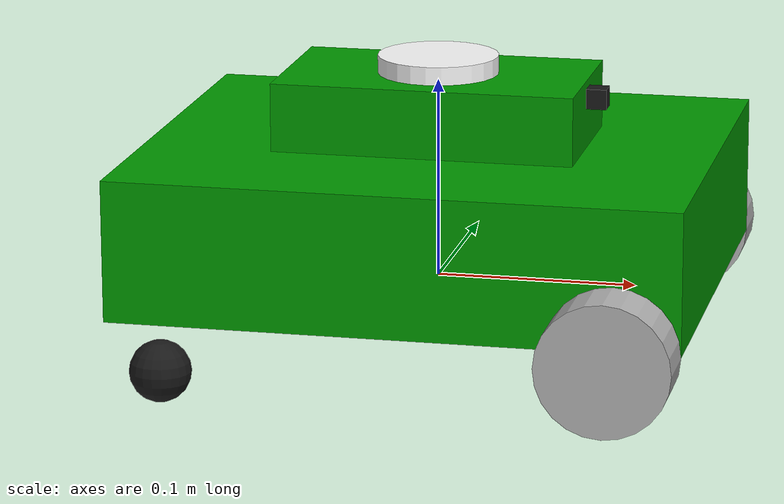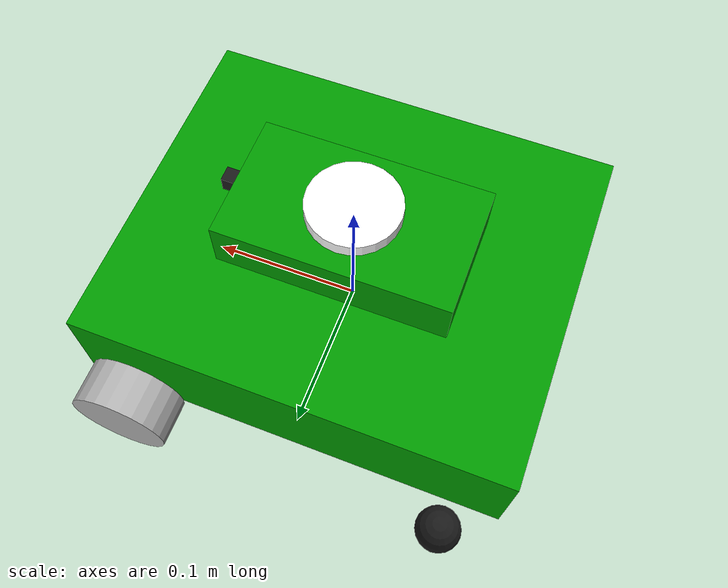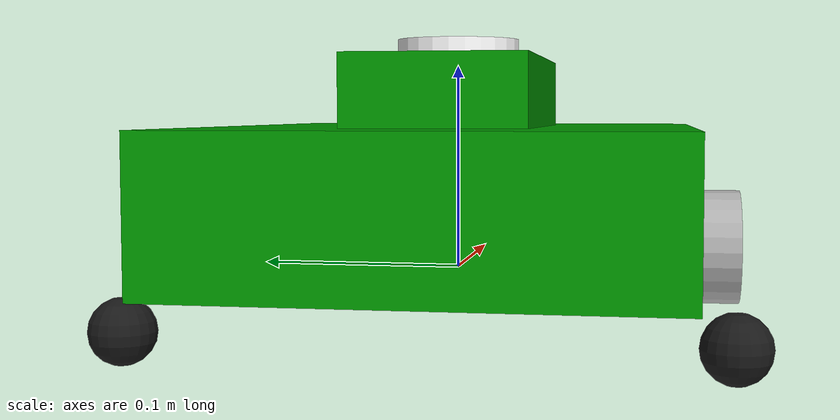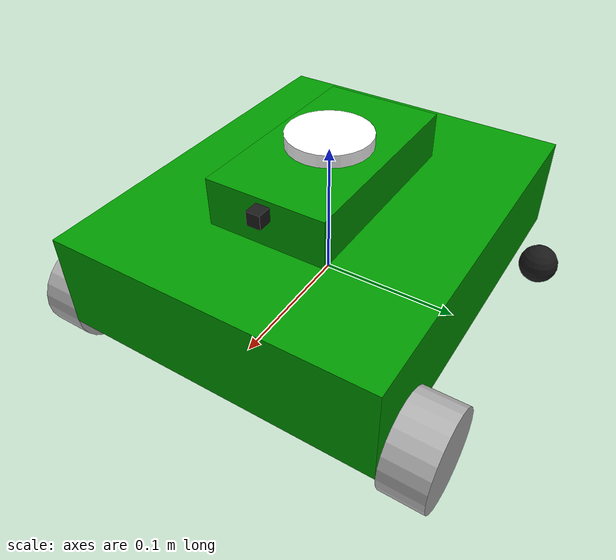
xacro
<?xml version="1.0"?>
<robot name="zeta" xmlns:xacro="http://www.ros.org/wiki/xacro">
  <!-- Constants -->
  <xacro:property name="M_PI" value="3.1415926535897931" />
  <xacro:property name="M_PI_2" value="1.5707963267948966" />

  <!-- Robot Parameters -->
  <xacro:property name="base_x" value="0.28" />
  <xacro:property name="base_y" value="0.23" />
  <xacro:property name="base_z" value="0.07" />
  <xacro:property name="wheel_radius" value="0.0325" />
  <xacro:property name="wheel_width" value="0.03" />
  <xacro:property name="wheel_separation" value="0.26" />

  <!-- Materials -->
  <material name="grey">
    <color rgba="0.7 0.7 0.7 1"/>
  </material>
  <material name="green">
    <color rgba="0 0.6 0 1"/>
  </material>
  <material name="white">
    <color rgba="1 1 1 1"/>
  </material>
  <material name="black">
    <color rgba="0.1 0.1 0.1 1"/>
  </material>

  <!-- Gazebo materials removed to avoid Ogre2 material conflicts -->

  <!-- Base link -->
  <link name="base_link">
    <visual>
      <geometry>
        <box size="${base_x} ${base_y} ${base_z}"/>
      </geometry>
      <origin xyz="0 0 0.035" rpy="0 0 0"/>
      <material name="green"/>
    </visual>
    <collision>
      <geometry>
        <box size="${base_x} ${base_y} ${base_z}"/>
      </geometry>
      <origin xyz="0 0 0.035" rpy="0 0 0"/>
    </collision>
    <inertial>
      <mass value="1.5"/>
      <inertia ixx="0.003" ixy="0.0" ixz="0.0"
               iyy="0.002" iyz="0.0"
               izz="0.003"/>
    </inertial>
  </link>

  <!-- Top floor -->
  <link name="top_floor">
    <visual>
      <geometry>
        <box size="0.15 0.085 0.038"/>
      </geometry>
      <origin xyz="0 0 0" rpy="0 0 0"/>
      <material name="green"/>
    </visual>
    <collision>
      <geometry>
        <box size="0.15 0.085 0.038"/>
      </geometry>
      <origin xyz="0 0 0" rpy="0 0 0"/>
    </collision>
    <inertial>
      <mass value="0.3"/>
      <inertia ixx="0.0001" ixy="0.0" ixz="0.0"
               iyy="0.0001" iyz="0.0"
               izz="0.0001"/>
    </inertial>
  </link>

  <!-- Joint between base and top floor -->
  <joint name="base_top_floor_joint" type="fixed">
    <parent link="base_link"/>
    <child link="top_floor"/>
    <origin xyz="0 0 0.085" rpy="0 0 0"/>
  </joint>

  <!-- Drive Wheel Macro -->
  <xacro:macro name="wheel" params="prefix x y z">
    <link name="${prefix}_wheel">
      <visual>
        <geometry>
          <cylinder radius="${wheel_radius}" length="${wheel_width}"/>
        </geometry>
        <origin xyz="0 0 0" rpy="${M_PI_2} 0 0"/>
        <material name="grey"/>
      </visual>
      <collision>
        <geometry>
          <cylinder radius="${wheel_radius}" length="${wheel_width}"/>
        </geometry>
        <origin xyz="0 0 0" rpy="${M_PI_2} 0 0"/>
      </collision>
      <inertial>
        <mass value="0.1"/>
        <inertia ixx="0.0001" ixy="0.0" ixz="0.0" iyy="0.0001" iyz="0.0" izz="0.0001"/>
      </inertial>
    </link>

    <joint name="base_${prefix}_wheel_joint" type="continuous">
      <parent link="base_link"/>
      <child link="${prefix}_wheel"/>
      <origin xyz="${x} ${y} ${z}" rpy="0 0 0"/>
      <axis xyz="0 1 0"/>
    </joint>
  </xacro:macro>

  <!-- Caster Wheel Macro -->
  <xacro:macro name="caster" params="prefix x y z">
    <link name="${prefix}_caster">
      <visual>
        <geometry>
          <sphere radius="0.015"/>
        </geometry>
        <origin xyz="0 0 0" rpy="0 0 0"/>
        <material name="black"/>
      </visual>
      <collision>
        <geometry>
          <sphere radius="0.015"/>
        </geometry>
        <origin xyz="0 0 0" rpy="0 0 0"/>
      </collision>
      <inertial>
        <mass value="0.05"/>
        <inertia ixx="0.00001" ixy="0.0" ixz="0.0" iyy="0.00001" iyz="0.0" izz="0.00001"/>
      </inertial>
    </link>

    <joint name="base_${prefix}_caster_joint" type="fixed">
      <parent link="base_link"/>
      <child link="${prefix}_caster"/>
      <origin xyz="${x} ${y} ${z}" rpy="0 0 0"/>
    </joint>

    <!-- Gazebo caster properties for low friction -->
    <gazebo reference="${prefix}_caster">
      <mu1>0.1</mu1>
      <mu2>0.1</mu2>
      <kp>1000000.0</kp>
      <kd>100.0</kd>
      <minDepth>0.001</minDepth>
      <maxVel>1.0</maxVel>
    </gazebo>
  </xacro:macro>

  <!-- Create front drive wheels (motorized) -->
  <xacro:wheel prefix="front_left" x="0.1075" y="0.13" z="0"/>
  <xacro:wheel prefix="front_right" x="0.1075" y="-0.13" z="0"/>

  <!-- Create rear caster wheels (low friction, easy turning) -->
  <xacro:caster prefix="rear_left" x="-0.1075" y="0.13" z="-0.0175"/>
  <xacro:caster prefix="rear_right" x="-0.1075" y="-0.13" z="-0.0175"/>

  <!-- Lidar -->
  <link name="lidar">
    <visual>
      <geometry>
        <cylinder radius="0.03" length="0.02"/>
      </geometry>
      <origin xyz="0 0 0" rpy="0 0 0"/>
      <material name="white"/>
    </visual>
    <collision>
      <geometry>
        <cylinder radius="0.03" length="0.05"/>
      </geometry>
      <origin xyz="0 0 0" rpy="0 0 0"/>
    </collision>
    <inertial>
      <mass value="0.1"/>
      <inertia ixx="0.0001" ixy="0.0" ixz="0.0" iyy="0.0001" iyz="0.0" izz="0.0001"/>
    </inertial>
  </link>

  <joint name="base_lidar_joint" type="fixed">
    <parent link="base_link"/>
    <child link="lidar"/>
    <origin xyz="0 0 0.103" rpy="0 0 0"/>
  </joint>

  <!-- Camera -->
  <link name="camera_link">
    <visual>
      <geometry>
        <box size="0.01 0.01 0.01"/>
      </geometry>
      <origin xyz="0 0 0" rpy="0 0 0"/>
      <material name="black"/>
    </visual>
    <collision>
      <geometry>
        <box size="0.01 0.01 0.01"/>
      </geometry>
      <origin xyz="0 0 0" rpy="0 0 0"/>
    </collision>
    <inertial>
      <mass value="0.1"/>
      <inertia ixx="0.00001" ixy="0.0" ixz="0.0" iyy="0.00001" iyz="0.0" izz="0.00001"/>
    </inertial>
  </link>

  <joint name="camera_joint" type="fixed">
    <parent link="top_floor"/>
    <child link="camera_link"/>
    <origin xyz="0.08 0 0.01" rpy="0 0 0"/>
  </joint>

  <!-- Gazebo Harmonic Camera Sensor - Temporarily disabled to avoid Ogre2 rendering issues -->

  <!-- Gazebo Harmonic 2D Laser Scanner - Full 360-degree coverage for SLAM -->
  <gazebo reference="lidar">
    <sensor name="lidar_sensor" type="gpu_ray">
      <pose>0 0 0 0 0 0</pose>
      <topic>lidar</topic>
      <update_rate>10.0</update_rate>
      <ray>
        <scan>
          <horizontal>
            <samples>360</samples>
            <resolution>1.0</resolution>
            <min_angle>-3.14159</min_angle>
            <max_angle>3.14159</max_angle>
          </horizontal>
        </scan>
        <range>
          <min>0.1</min>
          <max>10.0</max>
          <resolution>0.01</resolution>
        </range>
        <noise>
          <type>gaussian</type>
          <mean>0.0</mean>
          <stddev>0.01</stddev>
        </noise>
      </ray>
      <always_on>true</always_on>
      <visualize>true</visualize>
    </sensor>
  </gazebo>

  <!-- Gazebo Harmonic Differential Drive Plugin for Front-Wheel Drive -->
  <gazebo>
    <plugin filename="gz-sim8-diff-drive-system" name="gz::sim::systems::DiffDrive">
      <left_joint>base_front_left_wheel_joint</left_joint>
      <right_joint>base_front_right_wheel_joint</right_joint>
      <wheel_separation>${wheel_separation}</wheel_separation>
      <wheel_radius>${wheel_radius}</wheel_radius>
      <topic>cmd_vel</topic>
      <odom_topic>odom</odom_topic>
      <frame_id>odom</frame_id>
      <child_frame_id>base_link</child_frame_id>
      <odom_publish_frequency>50.0</odom_publish_frequency>
      <max_linear_acceleration>1.0</max_linear_acceleration>
      <max_angular_acceleration>2.0</max_angular_acceleration>
      <max_linear_velocity>0.5</max_linear_velocity>
      <max_angular_velocity>1.0</max_angular_velocity>
    </plugin>

    <!-- Joint State Publisher for wheel positions -->
    <plugin filename="gz-sim8-joint-state-publisher-system" name="gz::sim::systems::JointStatePublisher">
      <topic>joint_states</topic>
    </plugin>

    <!-- Sensors System for LiDAR and Camera - Using Ogre2 for Gazebo Harmonic -->
    <plugin filename="gz-sim8-sensors-system" name="gz::sim::systems::Sensors">
      <render_engine>ogre2</render_engine>
    </plugin>

    <!-- Pose Publisher disabled - using DiffDrive plugin for odometry instead -->
  </gazebo>
</robot>
